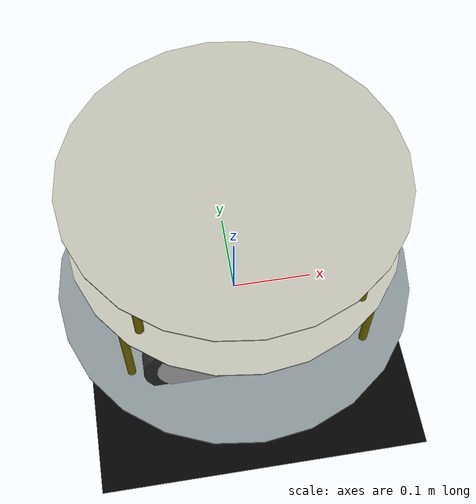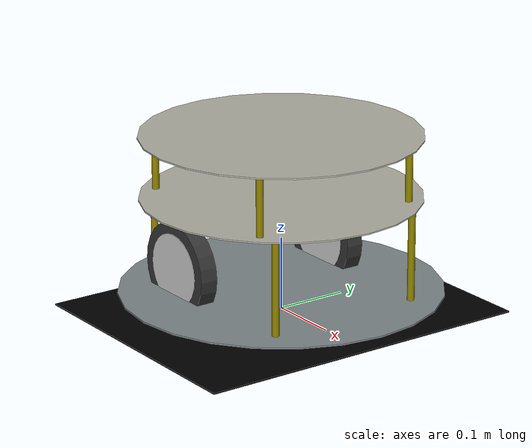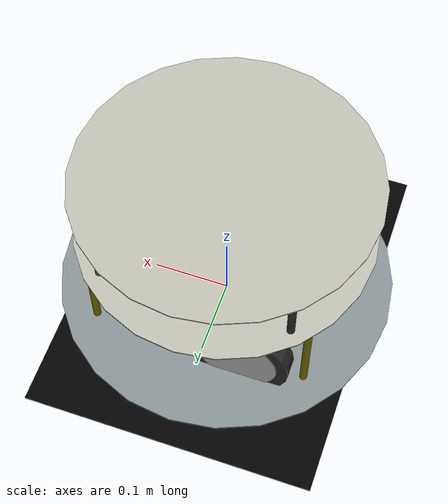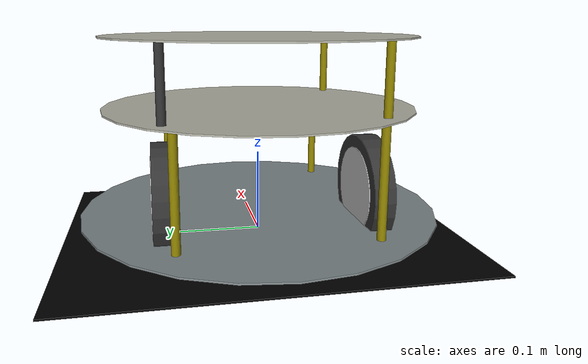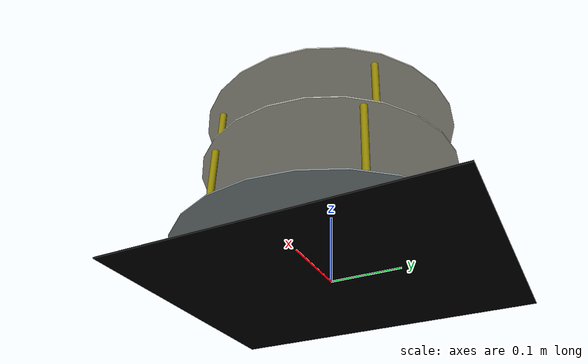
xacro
<?xml version="1.0"?>
<robot xmlns:xacro="http://ros.org/wiki/xacro">

  <xacro:include filename="$(find lemonabot_description)/urdf/frame/lemonabot_frame.urdf.xacro"/>
  <xacro:include filename="$(find handheld_mapper_description)/urdf/handheld_mapper_library.urdf.xacro"/>

  <!-- Bundle Markers -->
  <xacro:include filename="$(find lemonabot_description)/urdf/marker_bundle/marker_bundle.urdf.xacro"/>
</robot>

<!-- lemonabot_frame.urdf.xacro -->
<robot name="lemonabot_frame" xmlns:xacro="http://ros.org/wiki/xacro">
  <xacro:include filename="$(find lemonabot_description)/urdf/common_properties.urdf.xacro"/>

  <link name="base_footprint"/>

  <joint name="base_joint" type="fixed">
      <origin xyz="0 0 0" rpy="0 0 0" />
      <parent link="base_footprint"/>
      <child link="base_link" />
  </joint>

  <link name="base_link">
    <visual>
      <geometry>
        <box size=".38 .48 .002"/>
      </geometry>
      <origin rpy="0 0 0" xyz="0 0 0"/>
      <material name="none">
        <color rgba="0 0 0 0"/>
      </material>
    </visual>
  </link>

  <joint name="bottom_plate_joint" type="fixed">
      <origin xyz="0 0 0.03" rpy="0 0 0" />
      <parent link="base_link"/>
      <child link="bottom_plate_link" />
  </joint>

  <link name="bottom_plate_link">
    <visual>
      <geometry>
        <cylinder length="0.002" radius="0.22"/>
      </geometry>
      <origin rpy="0 0 0" xyz="0 0 0"/>
      <material name="plate_metal">
        <color rgba="0.5 0.54 0.55 1"/>
      </material>
    </visual>
  </link>

  <joint name="middle_plate_joint" type="fixed">
      <origin xyz="0 0 0.16" rpy="0 0 0" />
      <parent link="base_link"/>
      <child link="middle_plate_link" />
  </joint>

  <link name="middle_plate_link">
    <visual>
      <geometry>
	<cylinder length="0.002" radius="0.19"/>
      </geometry>
      <origin rpy="0 0 0" xyz="0 0 0"/>
      <material name="plate_white">
        <color rgba="0.7 0.7 0.65 1"/>
      </material>
    </visual>
  </link>

  <joint name="top_plate_joint" type="fixed">
      <origin xyz="0 0 0.245" rpy="0 0 0" />
      <parent link="base_link"/>
      <child link="top_plate_link" />
  </joint>

  <link name="top_plate_link">
    <visual>
      <geometry>
	<cylinder length="0.002" radius="0.19"/>
      </geometry>
      <origin rpy="0 0 0" xyz="0 0 0"/>
      <material name="plate_white" />
    </visual>
  </link>

  <!-- wheel -->
  <joint name="left_tire_joint" type="fixed">
      <origin xyz="-0.06 0.12 0.035" rpy="1.57075 1.57075 0" />
      <parent link="bottom_plate_link"/>
      <child link="left_tire_link" />
  </joint>

  <link name="left_tire_link">
    <visual>
      <geometry>
        <cylinder length="0.025" radius="0.065"/>
      </geometry>
      <origin rpy="0 0 0" xyz="0 0 0"/>
      <material name="black">
        <color rgba="0.2 0.2 0.2 1"/>
      </material>
    </visual>
  </link>

  <joint name="left_wheel_joint" type="fixed">
      <origin xyz="-0.06 0.12 0.035" rpy="1.57075 1.57075 0" />
      <parent link="bottom_plate_link"/>
      <child link="left_wheel_link" />
  </joint>

  <link name="left_wheel_link">
    <visual>
      <geometry>
        <cylinder length="0.027" radius="0.05"/>
      </geometry>
      <origin rpy="0 0 0" xyz="0 0 0"/>
      <material name="gray">
        <color rgba="0.8 0.8 0.8 1"/>
      </material>
    </visual>
  </link>

  <joint name="right_tire_joint" type="fixed">
      <origin xyz="-0.06 -0.12 0.035" rpy="1.57075 1.57075 0" />
      <parent link="bottom_plate_link"/>
      <child link="right_tire_link" />
  </joint>

  <link name="right_tire_link">
    <visual>
      <geometry>
        <cylinder length="0.025" radius="0.065"/>
      </geometry>
      <origin rpy="0 0 0" xyz="0 0 0"/>
      <material name="black" />
    </visual>
  </link>

  <joint name="right_wheel_joint" type="fixed">
      <origin xyz="-0.06 -0.12 0.035" rpy="1.57075 1.57075 0" />
      <parent link="bottom_plate_link"/>
      <child link="right_wheel_link" />
  </joint>

  <link name="right_wheel_link">
    <visual>
      <geometry>
        <cylinder length="0.027" radius="0.05"/>
      </geometry>
      <origin rpy="0 0 0" xyz="0 0 0"/>
      <material name="gray" />
    </visual>
  </link>

  <!-- pole -->

  <joint name="bottom_pole_1_joint" type="fixed">
      <origin xyz="0.14 0.11 0.065" rpy="0 0 0" />
      <parent link="bottom_plate_link"/>
      <child link="bottom_pole_1_link" />
  </joint>

  <link name="bottom_pole_1_link">
    <visual>
      <geometry>
        <cylinder length="0.13" radius="0.005"/>
      </geometry>
      <origin rpy="0 0 0" xyz="0 0 0"/>
      <material name="gold">
        <color rgba="0.55 0.5 0 1"/>
      </material>
    </visual>
  </link>

  <joint name="bottom_pole_2_joint" type="fixed">
      <origin xyz="-0.14 0.11 0.065" rpy="0 0 0" />
      <parent link="bottom_plate_link"/>
      <child link="bottom_pole_2_link" />
  </joint>

  <link name="bottom_pole_2_link">
    <visual>
      <geometry>
        <cylinder length="0.13" radius="0.005"/>
      </geometry>
      <origin rpy="0 0 0" xyz="0 0 0"/>
      <material name="gold" />
    </visual>
  </link>

  <joint name="bottom_pole_3_joint" type="fixed">
      <origin xyz="-0.14 -0.11 0.065" rpy="0 0 0" />
      <parent link="bottom_plate_link"/>
      <child link="bottom_pole_3_link" />
  </joint>

  <link name="bottom_pole_3_link">
    <visual>
      <geometry>
        <cylinder length="0.13" radius="0.005"/>
      </geometry>
      <origin rpy="0 0 0" xyz="0 0 0"/>
      <material name="gold"/>
    </visual>
  </link>

  <joint name="bottom_pole_4_joint" type="fixed">
      <origin xyz="0.14 -0.11 0.065" rpy="0 0 0" />
      <parent link="bottom_plate_link"/>
      <child link="bottom_pole_4_link" />
  </joint>

  <link name="bottom_pole_4_link">
    <visual>
      <geometry>
        <cylinder length="0.13" radius="0.005"/>
      </geometry>
      <origin rpy="0 0 0" xyz="0 0 0"/>
      <material name="gold"/>
    </visual>
  </link>

  <joint name="middle_pole_1_joint" type="fixed">
      <origin xyz="0.12 0.12 0.043" rpy="0 0 0" />
      <parent link="middle_plate_link"/>
      <child link="middle_pole_1_link" />
  </joint>

  <link name="middle_pole_1_link">
    <visual>
      <geometry>
        <cylinder length="0.085" radius="0.005"/>
      </geometry>
      <origin rpy="0 0 0" xyz="0 0 0"/>
      <material name="gold"/>
    </visual>
  </link>

  <joint name="middle_pole_2_joint" type="fixed">
      <origin xyz="-0.12 0.12 0.043" rpy="0 0 0" />
      <parent link="middle_plate_link"/>
      <child link="middle_pole_2_link" />
  </joint>

  <link name="middle_pole_2_link">
    <visual>
      <geometry>
        <cylinder length="0.085" radius="0.005"/>
      </geometry>
  <material name="black">
        <color rgba="0.2 0.2 0.2 1"/>
      </material>    <origin rpy="0 0 0" xyz="0 0 0"/>
      <material name="gold"/>
    </visual>
  </link>

  <joint name="middle_pole_3_joint" type="fixed">
      <origin xyz="-0.12 -0.12 0.043" rpy="0 0 0" />
      <parent link="middle_plate_link"/>
      <child link="middle_pole_3_link" />
  </joint>

  <link name="middle_pole_3_link">
    <visual>
      <geometry>
        <cylinder length="0.085" radius="0.005"/>
      </geometry>
      <origin rpy="0 0 0" xyz="0 0 0"/>
      <material name="gold"/>
    </visual>
  </link>
  <joint name="middle_pole_4_joint" type="fixed">
      <origin xyz="0.12 -0.12 0.043" rpy="0 0 0" />
      <parent link="middle_plate_link"/>
      <child link="middle_pole_4_link" />
  </joint>

  <link name="middle_pole_4_link">
    <visual>
      <geometry>
        <cylinder length="0.085" radius="0.005"/>
      </geometry>
      <origin rpy="0 0 0" xyz="0 0 0"/>
      <material name="gold"/>
    </visual>
  </link>

</robot>
